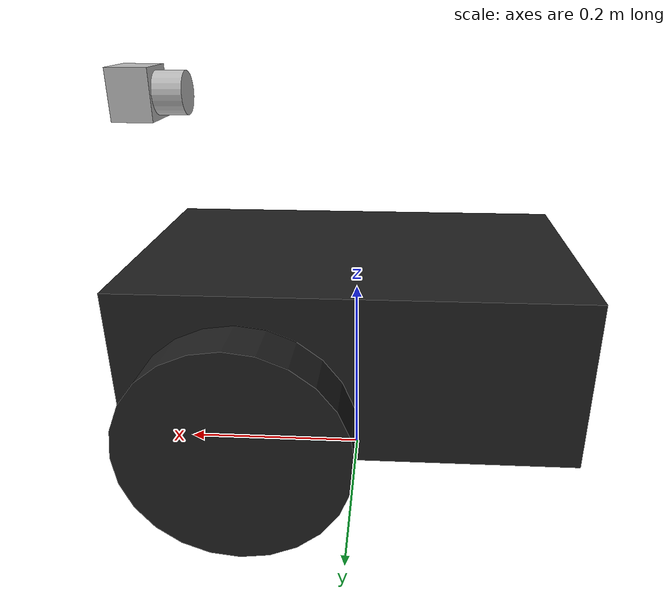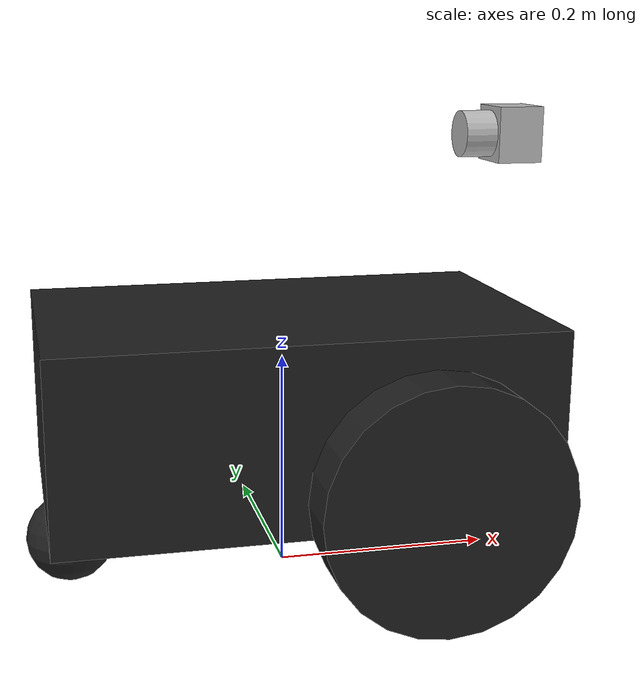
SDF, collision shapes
<?xml version="1.0"?>
<sdf version="1.6">
  <model name="subt_pioneer">
    <include>
      <uri>model://pioneer2dx</uri>
    </include>
    <include>
      <uri>model://hokuyo</uri>
      <name>v_hokuyo</name>
      <pose>0.2 0 0.4 0 -1.57 0</pose>
    </include>
    <include>
      <uri>model://hokuyo</uri>
      <name>h_hokuyo</name>
      <pose>0.2 0 0.13 0 0 0</pose>
    </include>
    <joint name="h_hokuyo_joint" type="revolute">
      <child>v_hokuyo::link</child>
      <parent>pioneer2dx::chassis</parent>
      <axis>
        <xyz>0 0 1</xyz>
        <limit>
          <upper>0</upper>
          <lower>0</lower>
        </limit>
      </axis>
    </joint>
    <joint name="v_hokuyo_joint" type="revolute">
      <child>h_hokuyo::link</child>
      <parent>pioneer2dx::chassis</parent>
      <axis>
        <xyz>0 0 1</xyz>
        <limit>
          <upper>0</upper>
          <lower>0</lower>
        </limit>
      </axis>
    </joint>
    <link name="imu_link">
      <sensor name="imu" type="imu">
        <always_on>1</always_on>
        <visualize>0</visualize>
        <update_rate>100.0</update_rate>
        <pose> 0.2 0 0.4 0 0 0 </pose>
      </sensor>
    </link>
    <link name="mag_link">
      <sensor name="magnetometer" type="magnetometer">
        <always_on>1</always_on>
        <update_rate>10</update_rate>
        <magnetometer>
        </magnetometer>
      </sensor>
    </link>
    <link name="camera_link">
      <sensor name="camera" type="camera">
        <always_on>1</always_on>
        <update_rate>30.0</update_rate>
        <visualize>0</visualize>
        <pose>0.2 0 0.6 0 0 0</pose>
        <camera>
          <horizontal_fov>0.9948</horizontal_fov>
          <image>
            <width>640</width>
            <height>480</height>
            <format>R8G8B8</format>
          </image>
          <clip>
            <near>0.01</near>
            <far>100.0</far>
          </clip>
        </camera>
      </sensor>
    </link>

    <joint name="chassis_imu_joint" type="fixed">
      <child>imu_link</child>
      <parent>pioneer2dx::chassis</parent>
    </joint>
    <joint name="chassis_mag_joint" type="fixed">
      <child>mag_link</child>
      <parent>pioneer2dx::chassis</parent>
    </joint>
    <joint name="chassis_camera_joint" type="fixed">
      <child>camera_link</child>
      <parent>pioneer2dx::chassis</parent>
    </joint>

  </model>
</sdf>

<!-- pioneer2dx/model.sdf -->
<sdf version="1.5">
  <model name="pioneer2dx">
    <link name="chassis">
      <pose>0 0 0.16 0 0 0</pose>
      <inertial>
        <mass>5.67</mass>
        <inertia>
          <ixx>0.07</ixx>
          <iyy>0.08</iyy>
          <izz>0.10</izz>
          <ixy>0</ixy>
          <ixz>0</ixz>
          <iyz>0</iyz>
        </inertia>
      </inertial>
      <collision name="collision">
        <geometry>
          <box>
            <size>0.445 0.277 0.17</size>
          </box>
        </geometry>
      </collision>
      <collision name="castor_collision">
        <pose>-0.200 0 -0.12 0 0 0</pose>
        <geometry>
          <sphere>
            <radius>0.04</radius>
          </sphere>
        </geometry>
        <surface>
          <friction>
            <ode>
              <mu>0</mu>
              <mu2>0</mu2>
              <slip1>1.0</slip1>
              <slip2>1.0</slip2>
            </ode>
          </friction>
        </surface>
      </collision>
      <visual name="visual">
        <pose>0 0 0.04 0 0 0</pose>
        <geometry>
          <mesh>
            <uri>model://../model_source/models/pioneer2dx/meshes/chassis.dae</uri>
          </mesh>
        </geometry>
      </visual>
      <visual name="castor_visual">
        <pose>-0.200 0 -0.12 0 0 0</pose>
        <geometry>
          <sphere>
            <radius>0.04</radius>
          </sphere>
        </geometry>
        <material>
          <script>
            <uri>file://media/materials/scripts/gazebo.material</uri>
            <name>Gazebo/FlatBlack</name>
          </script>
        </material>
      </visual>
    </link>
    <link name="right_wheel">
      <pose>0.1 -.17 0.11 0 1.5707 1.5707</pose>
      <inertial>
        <mass>1.5</mass>
        <inertia>
          <ixx>0.0051</ixx>
          <iyy>0.0051</iyy>
          <izz>0.0090</izz>
          <ixy>0</ixy>
          <ixz>0</ixz>
          <iyz>0</iyz>
        </inertia>
      </inertial>
      <collision name="collision">
        <geometry>
          <cylinder>
            <radius>0.11</radius>
            <length>0.05</length>
          </cylinder>
        </geometry>
        <surface>
          <friction>
            <ode>
              <mu>100000.0</mu>
              <mu2>100000.0</mu2>
              <slip1>0.0</slip1>
              <slip2>0.0</slip2>
            </ode>
          </friction>
        </surface>
      </collision>
      <visual name="visual">
        <geometry>
          <cylinder>
            <radius>0.11</radius>
            <length>0.05</length>
          </cylinder>
        </geometry>
        <material>
          <script>
            <uri>file://media/materials/scripts/gazebo.material</uri>
            <name>Gazebo/FlatBlack</name>
          </script>
        </material>
      </visual>
    </link>
    <link name="left_wheel">
      <pose>0.1 .17 0.11 0 1.5707 1.5707</pose>
      <inertial>
        <mass>1.5</mass>
        <inertia>
          <ixx>0.0051</ixx>
          <iyy>0.0051</iyy>
          <izz>0.0090</izz>
          <ixy>0</ixy>
          <ixz>0</ixz>
          <iyz>0</iyz>
        </inertia>
      </inertial>
      <collision name="collision">
        <geometry>
          <cylinder>
            <radius>0.11</radius>
            <length>0.05</length>
          </cylinder>
        </geometry>
        <surface>
          <friction>
            <ode>
              <mu>100000.0</mu>
              <mu2>100000.0</mu2>
              <slip1>0.0</slip1>
              <slip2>0.0</slip2>
            </ode>
          </friction>
        </surface>
      </collision>
      <visual name="visual">
        <geometry>
          <cylinder>
            <radius>0.11</radius>
            <length>0.05</length>
          </cylinder>
        </geometry>
        <material>
          <script>
            <uri>file://media/materials/scripts/gazebo.material</uri>
            <name>Gazebo/FlatBlack</name>
          </script>
        </material>
      </visual>
    </link>
    <joint type="revolute" name="left_wheel_hinge">
      <pose>0 0 -0.03 0 0 0</pose>
      <child>left_wheel</child>
      <parent>chassis</parent>
      <axis>
        <xyz>0 1 0</xyz>
        <use_parent_model_frame>true</use_parent_model_frame>
      </axis>
    </joint>
    <joint type="revolute" name="right_wheel_hinge">
      <pose>0 0 0.03 0 0 0</pose>
      <child>right_wheel</child>
      <parent>chassis</parent>
      <axis>
        <xyz>0 1 0</xyz>
        <use_parent_model_frame>true</use_parent_model_frame>
      </axis>
    </joint>
    <plugin filename="libDiffDrivePlugin.so" name="diff_drive">
      <left_joint>left_wheel_hinge</left_joint>
      <right_joint>right_wheel_hinge</right_joint>
      <torque>5</torque>
    </plugin>
  </model>
</sdf>

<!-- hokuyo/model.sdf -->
<sdf version="1.5">
  <model name="hokuyo">
    <pose>0 0 0.035 0 0 0</pose>
    <link name="link">
      <inertial>
        <mass>0.1</mass>
      </inertial>
      <visual name="visual">
        <geometry>
          <mesh>
            <uri>model://../model_source/models/hokuyo/meshes/hokuyo.dae</uri>
          </mesh>
        </geometry>
      </visual>
      <collision name="collision-base">
        <pose>0 0 -0.0145 0 0 0</pose>
        <geometry>
          <box>
            <size>0.05 0.05 0.041</size>
          </box>
        </geometry>
      </collision>
      <collision name="collision-top">
        <pose>0 0 0.0205 0 0 0</pose>
        <geometry>
          <cylinder>
            <radius>0.021</radius>
            <length>0.029</length>
          </cylinder>
        </geometry>
      </collision>
      <sensor name="laser" type="ray">
        <pose>0.01 0 0.0175 0 -0 0</pose>
        <ray>
          <scan>
            <horizontal>
              <samples>640</samples>
              <resolution>1</resolution>
              <min_angle>-2.26889</min_angle>
              <max_angle>2.268899</max_angle>
            </horizontal>
          </scan>
          <range>
            <min>0.08</min>
            <max>10</max>
            <resolution>0.01</resolution>
          </range>
        </ray>
        <plugin name="laser" filename="libRayPlugin.so" />
        <always_on>1</always_on>
        <update_rate>30</update_rate>
        <visualize>true</visualize>
      </sensor>
    </link>
  </model>
</sdf>
